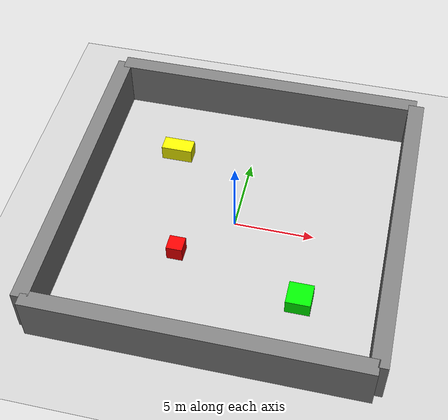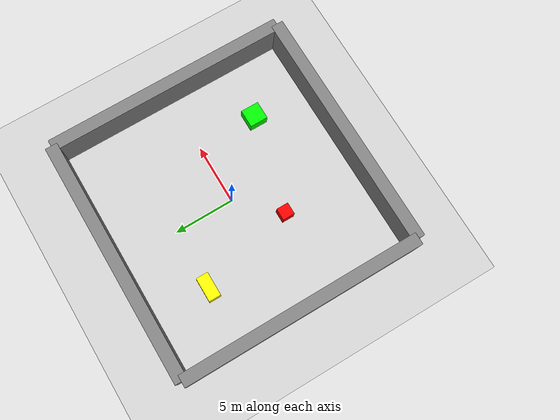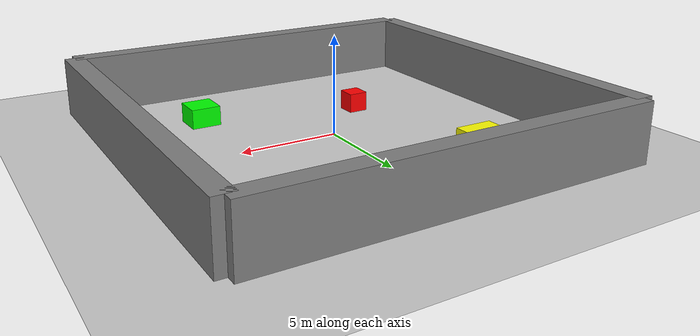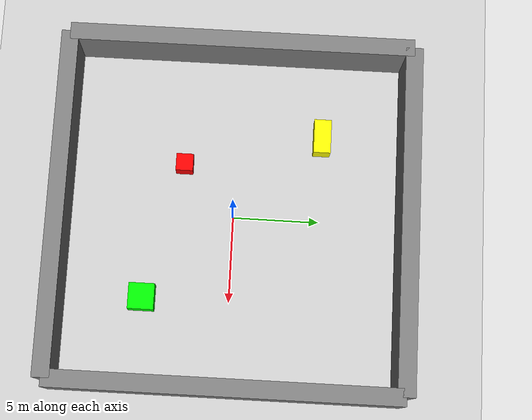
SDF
<?xml version="1.0"?>
<sdf version="1.7">
  <world name="slam_world">
    <plugin name="ignition::gazebo::systems::Physics" filename="ignition-gazebo-physics-system"/>
    <plugin name="ignition::gazebo::systems::UserCommands" filename="ignition-gazebo-user-commands-system"/>
    <plugin name="ignition::gazebo::systems::SceneManager" filename="ignition-gazebo-scene-manager-system"/>
    <plugin name="ignition::gazebo::systems::Imu" filename="ignition-gazebo-imu-system"/>
    <plugin name="ignition::gazebo::systems::MoreLidar" filename="ignition-gazebo-more-lidar-system"/>
    <plugin name="ignition::gazebo::systems::Sensors" filename="ignition-gazebo-sensors-system">
      <render_engine>ogre2</render_engine>
    </plugin>

    <light type="directional" name="sun">
      <cast_shadows>true</cast_shadows>
      <pose>0 0 10 0 0 0</pose>
      <diffuse>0.8 0.8 0.8 1</diffuse>
      <specular>0.2 0.2 0.2 1</specular>
      <attenuation>
        <range>1000</range>
        <constant>0.9</constant>
        <linear>0.01</linear>
        <quadratic>0.001</quadratic>
      </attenuation>
      <direction>-0.5 0.1 -0.9</direction>
    </light>

    <model name="ground_plane">
      <static>true</static>
      <link name="link">
        <collision name="collision">
          <geometry>
            <plane>
              <normal>0 0 1</normal>
              <size>100 100</size>
            </plane>
          </geometry>
        </collision>
        <visual name="visual">
          <geometry>
            <plane>
              <normal>0 0 1</normal>
              <size>100 100</size>
            </plane>
          </geometry>
          <material>
            <ambient>0.8 0.8 0.8 1</ambient>
            <diffuse>0.8 0.8 0.8 1</diffuse>
            <specular>0.8 0.8 0.8 1</specular>
          </material>
        </visual>
      </link>
    </model>

    <model name="wall_left">
      <static>true</static>
      <pose>-10 0 1.5 0 0 0</pose>
      <link name="link">
        <collision name="collision">
          <geometry>
            <box>
              <size>1 20 3</size>
            </box>
          </geometry>
        </collision>
        <visual name="visual">
          <geometry>
            <box>
              <size>1 20 3</size>
            </box>
          </geometry>
          <material>
            <ambient>0.5 0.5 0.5 1</ambient>
            <diffuse>0.5 0.5 0.5 1</diffuse>
            <specular>0.5 0.5 0.5 1</specular>
          </material>
        </visual>
      </link>
    </model>

    <model name="wall_right">
      <static>true</static>
      <pose>10 0 1.5 0 0 0</pose>
      <link name="link">
        <collision name="collision">
          <geometry>
            <box>
              <size>1 20 3</size>
            </box>
          </geometry>
        </collision>
        <visual name="visual">
          <geometry>
            <box>
              <size>1 20 3</size>
            </box>
          </geometry>
          <material>
            <ambient>0.5 0.5 0.5 1</ambient>
            <diffuse>0.5 0.5 0.5 1</diffuse>
            <specular>0.5 0.5 0.5 1</specular>
          </material>
        </visual>
      </link>
    </model>

    <model name="wall_front">
      <static>true</static>
      <pose>0 -10 1.5 0 0 0</pose>
      <link name="link">
        <collision name="collision">
          <geometry>
            <box>
              <size>20 1 3</size>
            </box>
          </geometry>
        </collision>
        <visual name="visual">
          <geometry>
            <box>
              <size>20 1 3</size>
            </box>
          </geometry>
          <material>
            <ambient>0.5 0.5 0.5 1</ambient>
            <diffuse>0.5 0.5 0.5 1</diffuse>
            <specular>0.5 0.5 0.5 1</specular>
          </material>
        </visual>
      </link>
    </model>

    <model name="wall_back">
      <static>true</static>
      <pose>0 10 1.5 0 0 0</pose>
      <link name="link">
        <collision name="collision">
          <geometry>
            <box>
              <size>20 1 3</size>
            </box>
          </geometry>
        </collision>
        <visual name="visual">
          <geometry>
            <box>
              <size>20 1 3</size>
            </box>
          </geometry>
          <material>
            <ambient>0.5 0.5 0.5 1</ambient>
            <diffuse>0.5 0.5 0.5 1</diffuse>
            <specular>0.5 0.5 0.5 1</specular>
          </material>
        </visual>
      </link>
    </model>

    <model name="obstacle_1">
      <static>true</static>
      <pose>-3 -3 0.5 0 0 0</pose>
      <link name="link">
        <collision name="collision">
          <geometry>
            <box>
              <size>1 1 1</size>
            </box>
          </geometry>
        </collision>
        <visual name="visual">
          <geometry>
            <box>
              <size>1 1 1</size>
            </box>
          </geometry>
          <material>
            <ambient>1 0 0 1</ambient>
            <diffuse>1 0 0 1</diffuse>
            <specular>1 0 0 1</specular>
          </material>
        </visual>
      </link>
    </model>

    <model name="obstacle_2">
      <static>true</static>
      <pose>5 -5 0.5 0 0 0</pose>
      <link name="link">
        <collision name="collision">
          <geometry>
            <box>
              <size>1.5 1.5 1</size>
            </box>
          </geometry>
        </collision>
        <visual name="visual">
          <geometry>
            <box>
              <size>1.5 1.5 1</size>
            </box>
          </geometry>
          <material>
            <ambient>0 1 0 1</ambient>
            <diffuse>0 1 0 1</diffuse>
            <specular>0 1 0 1</specular>
          </material>
        </visual>
      </link>
    </model>

    <model name="obstacle_3">
      <static>true</static>
      <pose>-5 5 0.5 0 0 0</pose>
      <link name="link">
        <collision name="collision">
          <geometry>
            <box>
              <size>2 1 1</size>
            </box>
          </geometry>
        </collision>
        <visual name="visual">
          <geometry>
            <box>
              <size>2 1 1</size>
            </box>
          </geometry>
          <material>
            <ambient>1 1 0 1</ambient>
            <diffuse>1 1 0 1</diffuse>
            <specular>1 1 0 1</specular>
          </material>
        </visual>
      </link>
    </model>

  </world>
</sdf>
